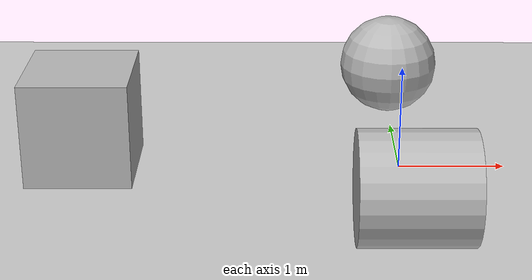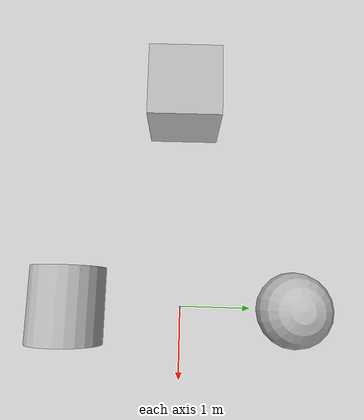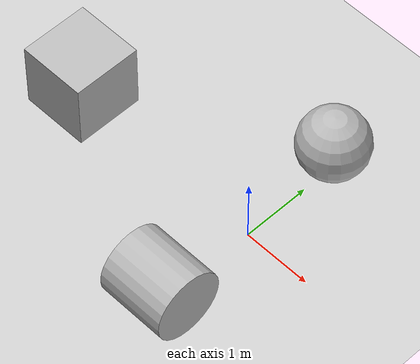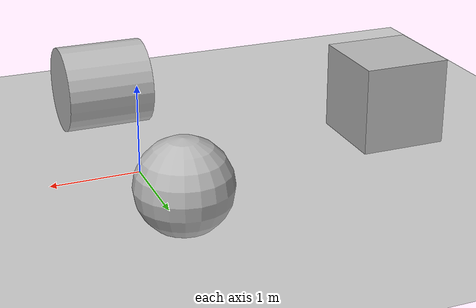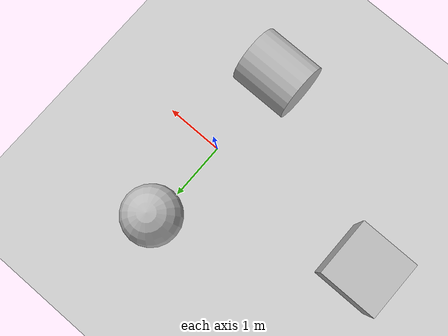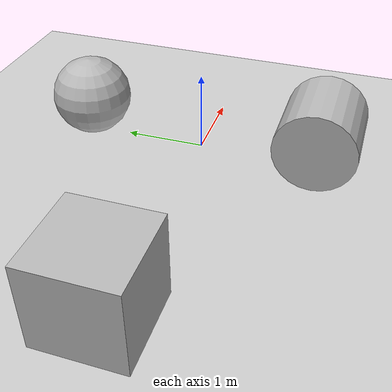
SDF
<?xml version="1.0" ?>
<sdf version="1.5">
  <world name="default">
    <light name='sun' type='directional'>
      <cast_shadows>1</cast_shadows>
      <pose>0 0 10 0 -0 0</pose>
      <diffuse>0.8 0.8 0.8 1</diffuse>
      <specular>0.2 0.2 0.2 1</specular>
      <attenuation>
        <range>1000</range>
        <constant>0.9</constant>
        <linear>0.01</linear>
        <quadratic>0.001</quadratic>
      </attenuation>
      <direction>-0.5 0.1 -0.9</direction>
      <spot>
        <inner_angle>0</inner_angle>
        <outer_angle>0</outer_angle>
        <falloff>0</falloff>
      </spot>
    </light>
    <model name='ground_plane'>
      <static>1</static>
      <link name='link'>
        <collision name='collision'>
          <geometry>
            <plane>
              <normal>0 0 1</normal>
              <size>100 100</size>
            </plane>
          </geometry>
          <surface>
            <contact>
              <collide_bitmask>65535</collide_bitmask>
              <ode/>
            </contact>
            <friction>
              <ode>
                <mu>100</mu>
                <mu2>50</mu2>
              </ode>
              <torsional>
                <ode/>
              </torsional>
            </friction>
            <bounce/>
          </surface>
          <max_contacts>10</max_contacts>
        </collision>
        <visual name='visual'>
          <cast_shadows>0</cast_shadows>
          <geometry>
            <plane>
              <normal>0 0 1</normal>
              <size>100 100</size>
            </plane>
          </geometry>
          <material>
            <script>
              <uri>file://media/materials/scripts/gazebo.material</uri>
              <name>Gazebo/Grey</name>
            </script>
          </material>
        </visual>
        <self_collide>0</self_collide>
        <enable_wind>0</enable_wind>
        <kinematic>0</kinematic>
      </link>
    </model>
    <gravity>0 0 -9.8</gravity>
    <magnetic_field>6e-06 2.3e-05 -4.2e-05</magnetic_field>
    <atmosphere type='adiabatic'/>
    <physics type='ode'>
      <max_step_size>0.001</max_step_size>
      <real_time_factor>1</real_time_factor>
      <real_time_update_rate>1000</real_time_update_rate>
    </physics>
    <scene>
      <ambient>0.4 0.4 0.4 1</ambient>
      <background>0.7 0.7 0.7 1</background>
      <shadows>1</shadows>
    </scene>
    <wind/>
    <model name="box">
      <pose>-3 0 0.5 0 0 0</pose>
      <link name="link">
        <collision name="collision">
          <geometry>
            <box>
              <size>1 1 1</size>
            </box>
          </geometry>
        </collision>
        <visual name="visual">
          <geometry>
            <box>
              <size>1 1 1</size>
            </box>
          </geometry>
        </visual>
      </link>
    </model>
    <model name="sphere">
      <pose>0 1.5 0.5 0 0 0</pose>
      <link name="link">
        <collision name="collision">
          <geometry>
            <sphere>
              <radius>0.5</radius>
            </sphere>
          </geometry>
        </collision>
        <visual name="visual">
          <geometry>
            <sphere>
              <radius>0.5</radius>
            </sphere>
          </geometry>
        </visual>
      </link>
    </model>
    <model name="cylinder">
      <pose>0 -1.5 0.5 0 1.5707 0</pose>
      <link name="link">
        <collision name="collision">
          <geometry>
            <cylinder>
              <radius>0.5</radius>
              <length>1.0</length>
            </cylinder>
          </geometry>
        </collision>
        <visual name="visual">
          <geometry>
            <cylinder>
              <radius>0.5</radius>
              <length>1.0</length>
            </cylinder>
          </geometry>
        </visual>
      </link>
    </model>
    <plugin name="gazebo_ros_state" filename="libgazebo_ros_state.so">
      <ros>
        <namespace>/gazebo</namespace>
      </ros>

      <update_rate>10.0</update_rate>
    </plugin>
  </world>
</sdf>
